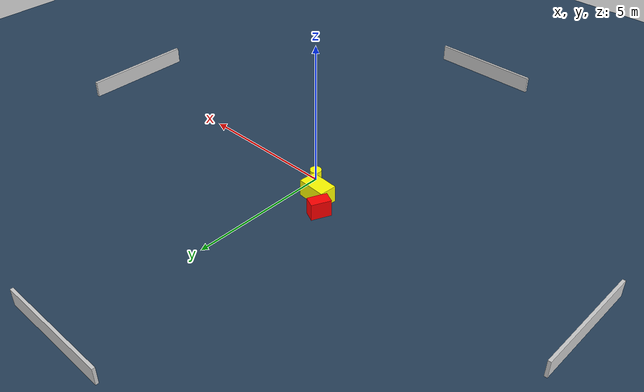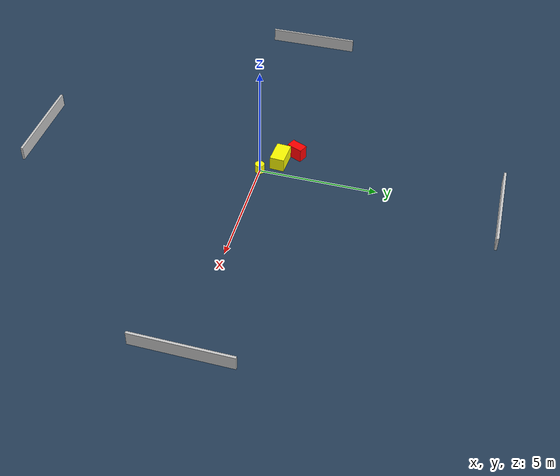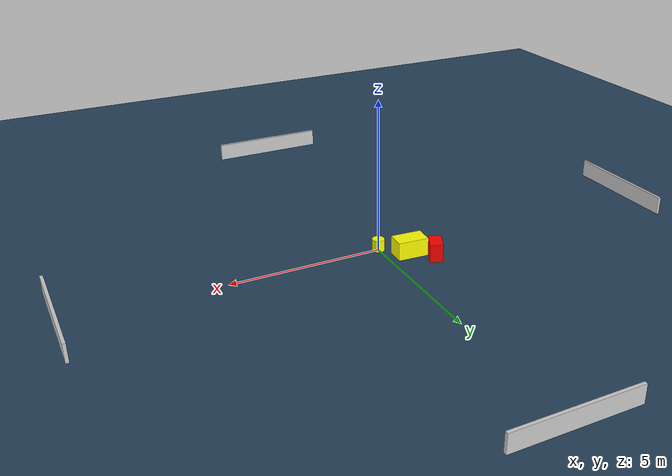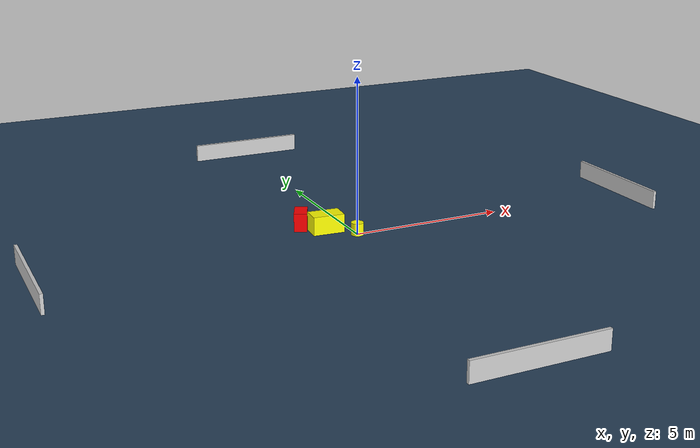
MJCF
<?xml version="1.0" ?>
<mujoco model="generated_environment">
  <option timestep="0.01" integrator="RK4" cone="elliptic"/>
  <default>
    <geom density="1"/>
  </default>
  <asset>
    <texture builtin="gradient" height="3072" name="skybox" rgb1="0.3 0.5 0.7" rgb2="0 0 0" type="skybox" width="512"/>
    <texture builtin="checker" height="300" name="groundplane" rgb1="0.2 0.3 0.4" rgb2="0.1 0.2 0.3" type="2d" width="300"/>
    <material name="groundplane" reflectance="0.2" texrepeat="5 5" texture="groundplane"/>
  </asset>
  <worldbody>
    <light dir="0 0 -1" directional="true" pos="0 0 1.5"/>
    <geom condim="3" friction="0.5 0.005 0.001" material="groundplane" name="floor" pos="0 0 0" size="0 0 0.05" type="plane"/>
    <body name="walls">
      <geom name="wall_1" condim="4" pos="-10.0 0.0 0.3" rgba="0.800000011920929 0.800000011920929 0.800000011920929 1.0" size="0.05 2.0 0.3" type="box"/>
      <geom name="wall_2" condim="4" pos="10.0 0.0 0.3" rgba="0.800000011920929 0.800000011920929 0.800000011920929 1.0" size="0.05 2.0 0.3" type="box"/>
      <geom name="wall_3" condim="4" pos="0.0 -10.0 0.3" rgba="0.800000011920929 0.800000011920929 0.800000011920929 1.0" size="2.0 0.05 0.3" type="box"/>
      <geom name="wall_4" condim="4" pos="0.0 10.0 0.3" rgba="0.800000011920929 0.800000011920929 0.800000011920929 1.0" size="2.0 0.05 0.3" type="box"/>
    </body>
    <body name="robot">
      <joint name="joint_x" type="slide" pos="0 0 0" axis="1 0 0"/>
      <joint name="joint_y" type="slide" pos="0 0 0" axis="0 1 0"/>
      <geom name="robot" type="cylinder" pos="0.0 0.0 0.2" size="0.2 0.2 0.0" mass="5.0" friction="1.0 0.005 0.0001" condim="4" rgba="1.0 1.0 0.0 1.0"/>
    </body>
    <body name="obstacle_1_movable">
      <geom name="obstacle_1_movable" condim="4" pos="-0.7573107337888988 0.7054747859027181 0.3" euler="0 0 266.314549122135" friction="0.0 0.005 0.001" rgba="1.0 1.0 0.0 1.0" size="0.3059618787168774 0.5062161247999127 0.3" type="box" mass="0.1"/>
      <joint type="free"/>
    </body>
    <body name="obstacle_2_static">
      <geom name="obstacle_2_static" condim="4" pos="-1.3697999484312917 1.2768318743797349 0.3" euler="0 0 335.4179806987857" friction="0.0 0.005 0.001" rgba="1.0 0.0 0.0 1.0" size="0.20678810017413396 0.34687250684581544 0.3" type="box"/>
    </body>
  </worldbody>
  <actuator>
    <motor name="actuator_x" joint="joint_x" gear="1" ctrlrange="-1 1"/>
    <motor name="actuator_y" joint="joint_y" gear="1" ctrlrange="-1 1"/>
  </actuator>
</mujoco>
